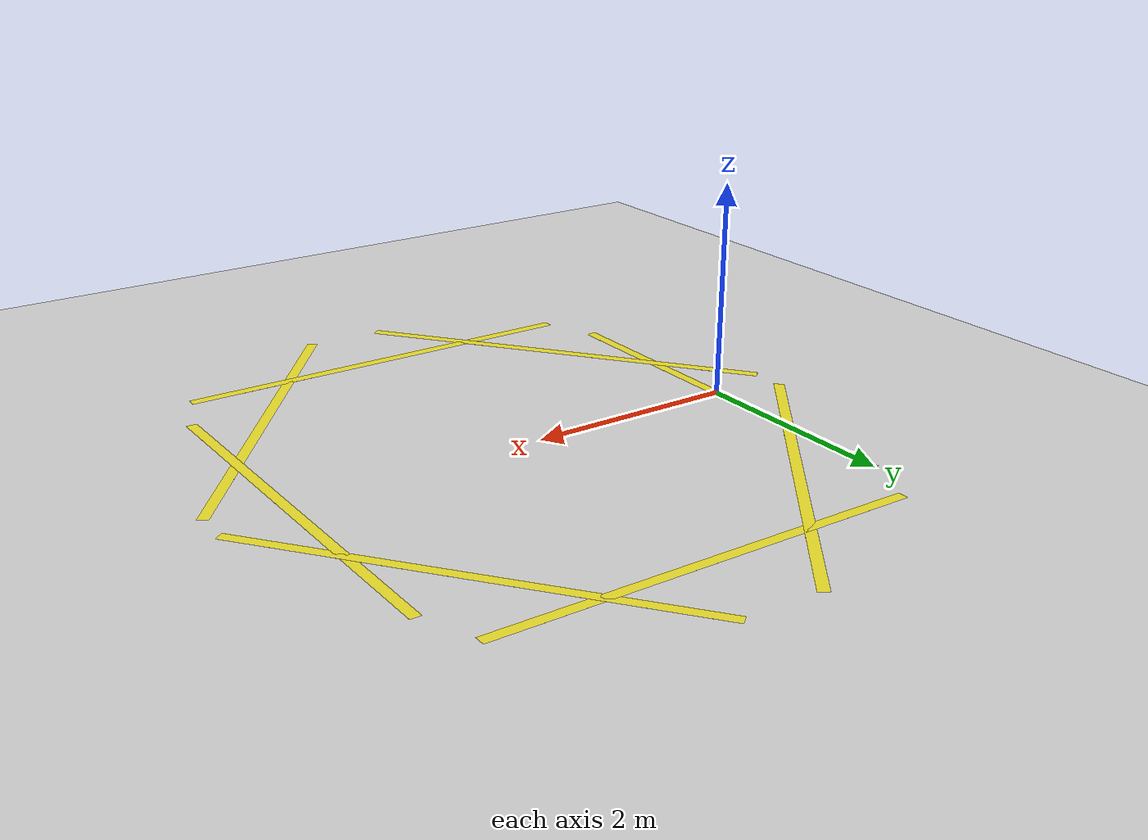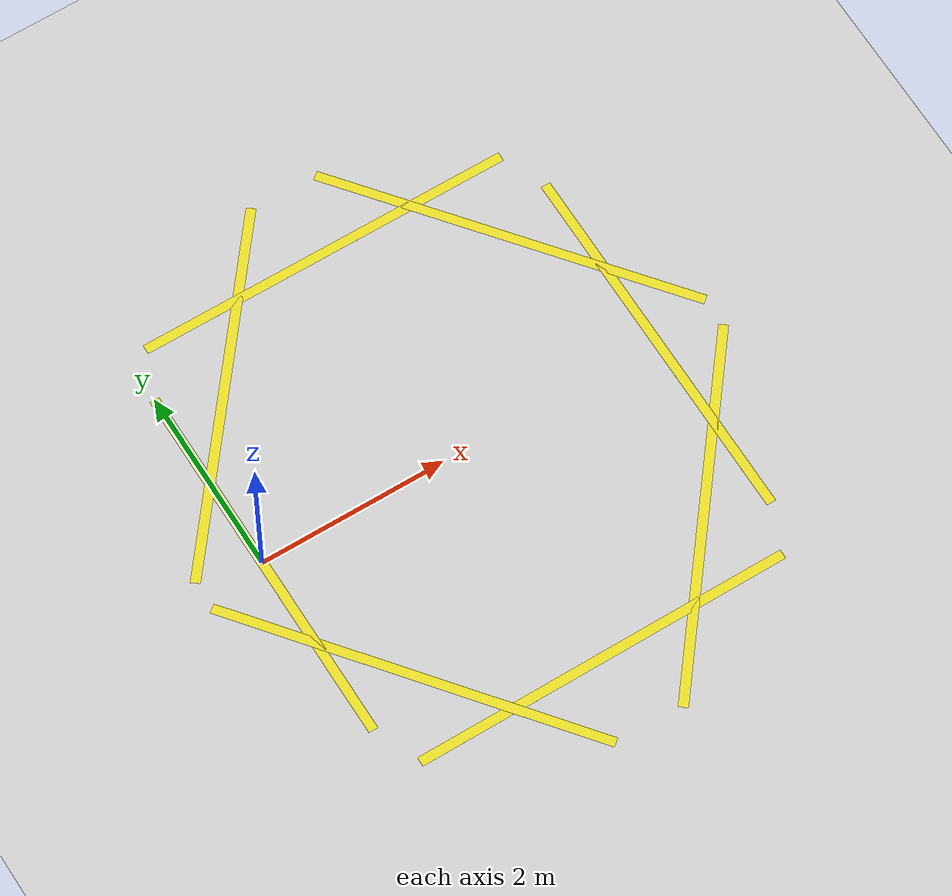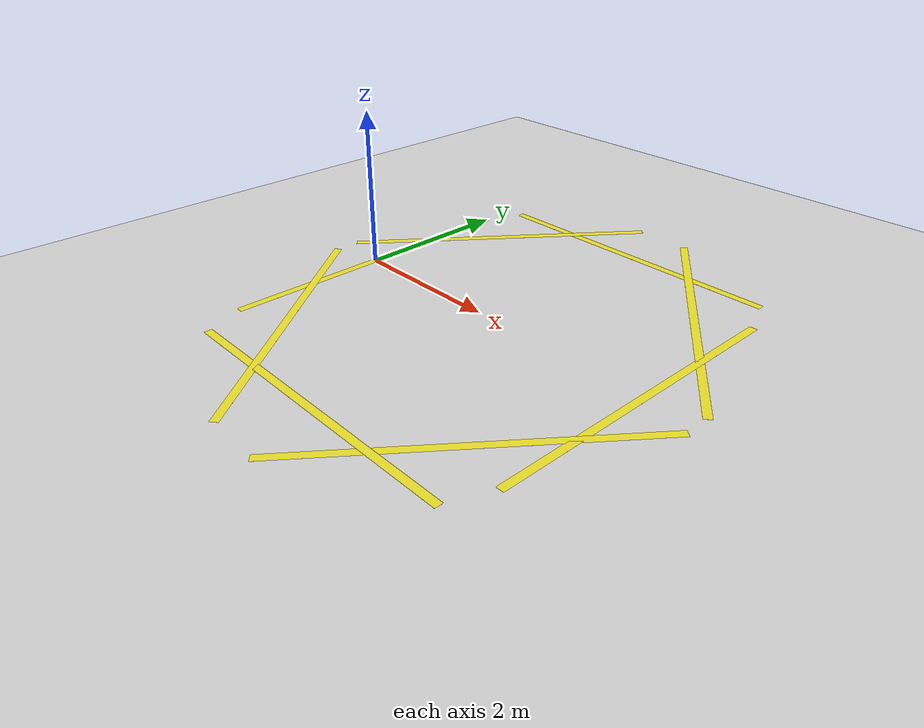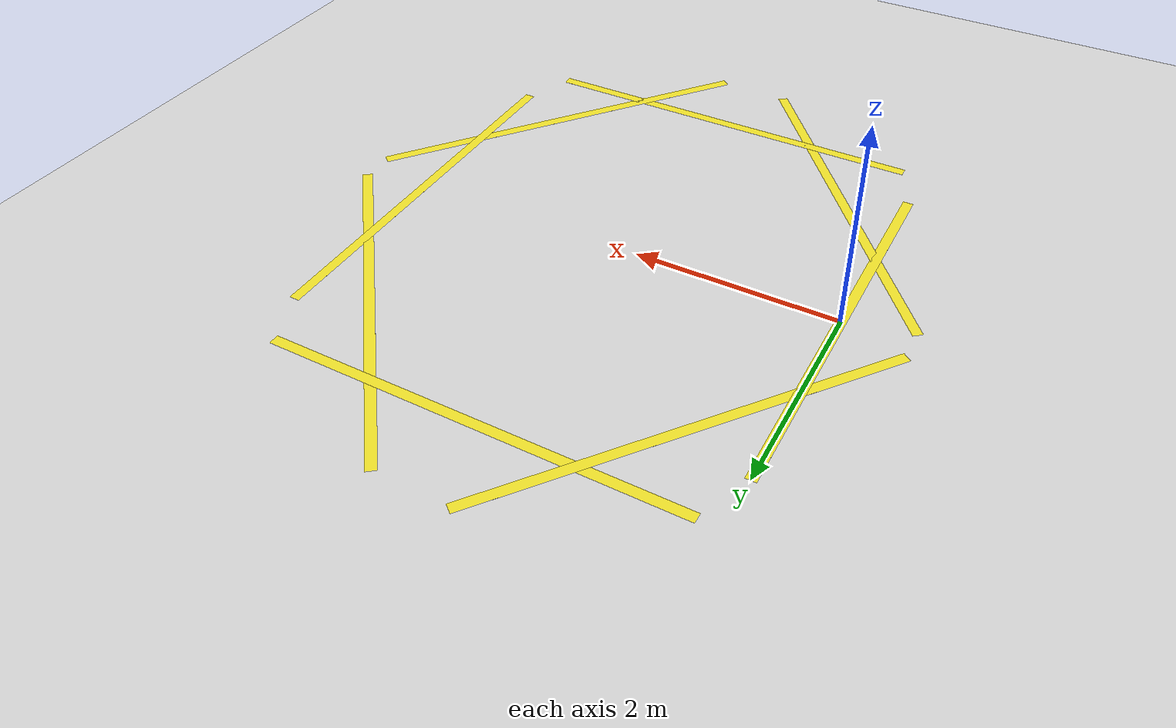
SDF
<sdf version="1.6">
 <world name="default">
  <light name="sun" type="directional">
   <pose>0 0 10 0 -0 0</pose>
   <diffuse>0.8 0.8 0.8 1</diffuse>
   <specular>0.2 0.2 0.2 1</specular>
   <attenuation>
    <range>1000</range>
    <constant>0.9</constant>
    <linear>0.01</linear>
    <quadratic>0.001</quadratic>
   </attenuation>
   <direction>-0.5 0.1 -0.9</direction>
  </light>
  <model name="yellow line_1">
   <static>1</static>
   <link name="link_ground">
    <collision name="collision">
     <geometry><plane><normal>0 0 1</normal><size>0.1 4</size></plane></geometry>
     <surface><friction><ode><mu>100</mu><mu2>50</mu2></ode></friction></surface>
    </collision>
    <visual name="visual_ground">
     <cast_shadows>0</cast_shadows>
     <geometry><plane><normal>0 0 1</normal><size>0.1 4</size></plane></geometry>
     <material>
      <script><uri>file://media/materials/scripts/gazebo.material</uri><name>Gazebo/Yellow</name></script>
     </material>
    </visual>
   </link>
  </model>
  <model name="yellow line_2">
   <static>1</static>
   <link name="link_ground">
    <collision name="collision">
     <geometry><plane><normal>0 0 1</normal><size>0.1 4</size></plane></geometry>
     <surface><friction><ode><mu>100</mu><mu2>50</mu2></ode></friction></surface>
    </collision>
    <visual name="visual_ground">
     <cast_shadows>0</cast_shadows>
     <geometry><plane><normal>0 0 1</normal><size>0.1 4</size></plane></geometry>
     <material>
      <script><uri>file://media/materials/scripts/gazebo.material</uri><name>Gazebo/Yellow</name></script>
     </material>
    </visual>
   </link>
   <pose>0.6 1.72 0 0 0 -0.67</pose>
  </model>
  <model name="yellow line_3">
   <static>1</static>
   <link name="link_ground">
    <collision name="collision">
     <geometry><plane><normal>0 0 1</normal><size>0.1 4</size></plane></geometry>
     <surface><friction><ode><mu>100</mu><mu2>50</mu2></ode></friction></surface>
    </collision>
    <visual name="visual_ground">
     <cast_shadows>0</cast_shadows>
     <geometry><plane><normal>0 0 1</normal><size>0.1 4</size></plane></geometry>
     <material>
      <script><uri>file://media/materials/scripts/gazebo.material</uri><name>Gazebo/Yellow</name></script>
     </material>
    </visual>
   </link>
   <pose>2.2 -2.5 0 0 -0 1.57</pose>
  </model>
  <model name="yellow line_4">
   <static>1</static>
   <link name="link_ground">
    <collision name="collision">
     <geometry><plane><normal>0 0 1</normal><size>0.1 4</size></plane></geometry>
     <surface><friction><ode><mu>100</mu><mu2>50</mu2></ode></friction></surface>
    </collision>
    <visual name="visual_ground">
     <cast_shadows>0</cast_shadows>
     <geometry><plane><normal>0 0 1</normal><size>0.1 4</size></plane></geometry>
     <material>
      <script><uri>file://media/materials/scripts/gazebo.material</uri><name>Gazebo/Yellow</name></script>
     </material>
    </visual>
   </link>
   <pose>3.8 -1.75 0 0 0 -0.67</pose>
  </model>
  <model name="yellow line_5">
   <static>1</static>
   <link name="link_ground">
    <collision name="collision">
     <geometry><plane><normal>0 0 1</normal><size>0.1 4</size></plane></geometry>
     <surface><friction><ode><mu>100</mu><mu2>50</mu2></ode></friction></surface>
    </collision>
    <visual name="visual_ground">
     <cast_shadows>0</cast_shadows>
     <geometry><plane><normal>0 0 1</normal><size>0.1 4</size></plane></geometry>
     <material>
      <script><uri>file://media/materials/scripts/gazebo.material</uri><name>Gazebo/Yellow</name></script>
     </material>
    </visual>
   </link>
   <pose>4.4 0 0 0 -0 0</pose>
  </model>
  <model name="yellow line_6">
   <static>1</static>
   <link name="link_ground">
    <collision name="collision">
     <geometry><plane><normal>0 0 1</normal><size>0.1 4</size></plane></geometry>
     <surface><friction><ode><mu>100</mu><mu2>50</mu2></ode></friction></surface>
    </collision>
    <visual name="visual_ground">
     <cast_shadows>0</cast_shadows>
     <geometry><plane><normal>0 0 1</normal><size>0.1 4</size></plane></geometry>
     <material>
      <script><uri>file://media/materials/scripts/gazebo.material</uri><name>Gazebo/Yellow</name></script>
     </material>
    </visual>
   </link>
   <pose>3.8 1.7 0 0 -0 0.67</pose>
  </model>
  <model name="yellow line_7">
   <static>1</static>
   <link name="link_ground">
    <collision name="collision">
     <geometry><plane><normal>0 0 1</normal><size>0.1 2</size></plane></geometry>
     <surface><friction><ode><mu>100</mu><mu2>50</mu2></ode></friction></surface>
    </collision>
    <visual name="visual_ground">
     <cast_shadows>0</cast_shadows>
     <geometry><plane><normal>0 0 1</normal><size>0.1 4</size></plane></geometry>
     <material>
      <script><uri>file://media/materials/scripts/gazebo.material</uri><name>Gazebo/Yellow</name></script>
     </material>
    </visual>
   </link>
   <pose>0.6 -1.72 0 0 -0 0.67</pose>
  </model>
  <model name="yellow line_8">
   <static>1</static>
   <link name="link_ground">
    <collision name="collision">
     <geometry><plane><normal>0 0 1</normal><size>0.1 4</size></plane></geometry>
     <surface><friction><ode><mu>100</mu><mu2>50</mu2></ode></friction></surface>
    </collision>
    <visual name="visual_ground">
     <cast_shadows>0</cast_shadows>
     <geometry><plane><normal>0 0 1</normal><size>0.1 4</size></plane></geometry>
     <material>
      <script><uri>file://media/materials/scripts/gazebo.material</uri><name>Gazebo/Yellow</name></script>
     </material>
    </visual>
   </link>
   <pose>2.2 2.5 0 0 -0 1.568</pose>
  </model>
  <model name="ground_plane">
   <pose>0 0 0 0 0 -0.67</pose>
   <static>1</static>
   <link name="link">
    <collision name="collision">
     <geometry><plane><normal>0 0 1</normal><size>100 100</size></plane></geometry>
     <surface>
      <contact><collide_bitmask>65535</collide_bitmask></contact>
      <friction><ode><mu>100</mu><mu2>50</mu2></ode></friction>
     </surface>
    </collision>
    <visual name="visual">
     <cast_shadows>0</cast_shadows>
     <geometry><plane><normal>0 0 1</normal><size>100 100</size></plane></geometry>
     <material>
      <script><uri>file://media/materials/scripts/gazebo.material</uri><name>Gazebo/Grey</name></script>
     </material>
    </visual>
   </link>
  </model>
  <gravity>0 0 -9.8</gravity>
  <magnetic_field>6e-06 2.3e-05 -4.2e-05</magnetic_field>
  <atmosphere type="adiabatic"/>
  <physics name="default_physics" default="0" type="ode">
   <max_step_size>0.001</max_step_size>
   <real_time_factor>1</real_time_factor>
   <real_time_update_rate>1000</real_time_update_rate>
  </physics>
  <scene><ambient>0.4 0.4 0.4 1</ambient><background>0.7 0.7 0.7 1</background><shadows>1</shadows></scene>
  <audio><device>default</device></audio>
  <spherical_coordinates>
   <surface_model>EARTH_WGS84</surface_model>
   <latitude_deg>0</latitude_deg>
   <longitude_deg>0</longitude_deg>
   <elevation>0</elevation>
   <heading_deg>0</heading_deg>
  </spherical_coordinates>
 </world>
</sdf>
